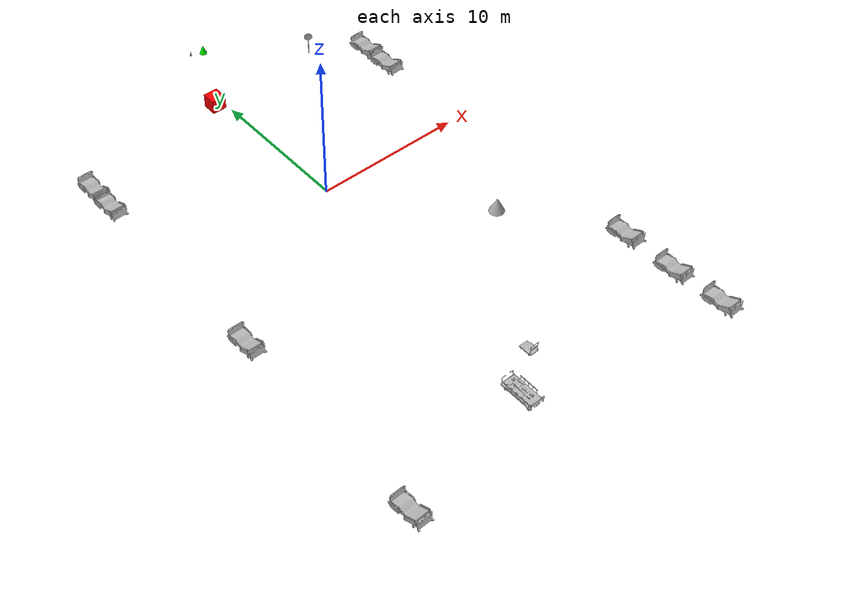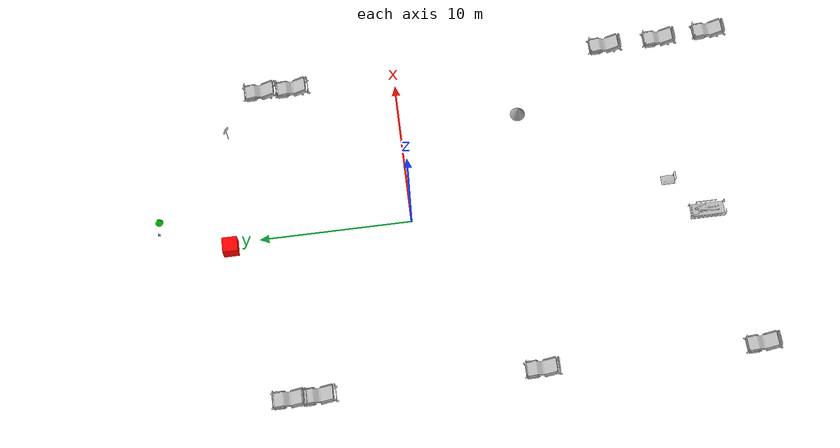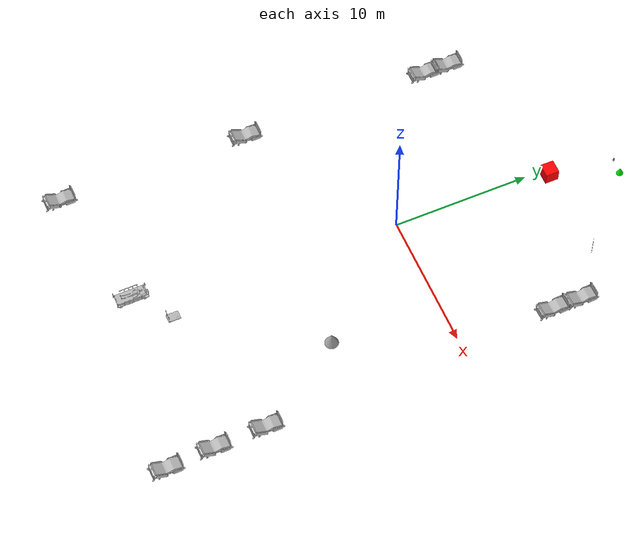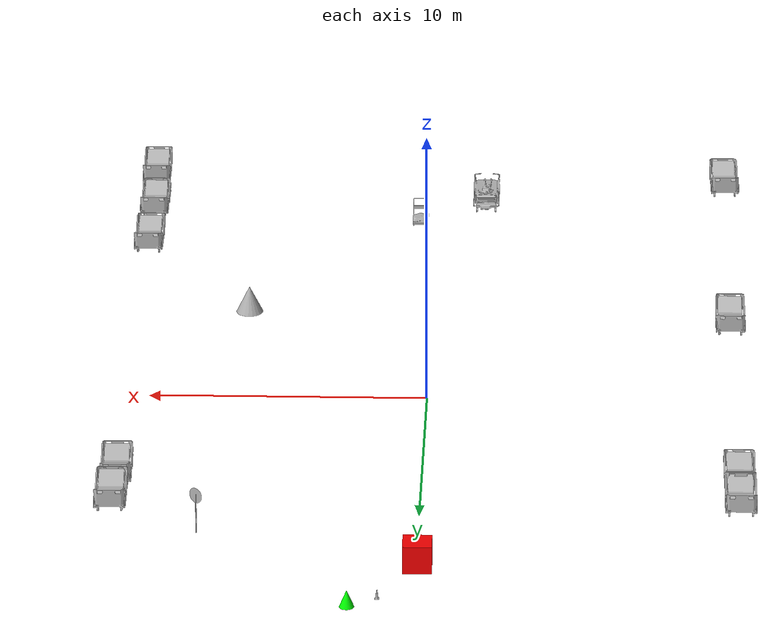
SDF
<sdf version="1.8">
 <world name="hospital">
  <gravity>0 0 -9.8</gravity>
  <physics name="default_physics" type="ode">
   <max_step_size>0.001</max_step_size>
   <real_time_factor>1</real_time_factor>
  </physics>
  <scene><ambient>0.3 0.3 0.3 1</ambient><background>0.7 0.8 0.9 1</background><shadows>true</shadows></scene>
  <plugin filename="gz-sim-physics-system" name="gz::sim::systems::Physics"/>
  <plugin filename="gz-sim-user-commands-system" name="gz::sim::systems::UserCommands"/>
  <plugin filename="gz-sim-scene-broadcaster-system" name="gz::sim::systems::SceneBroadcaster"/>
  <plugin filename="gz-sim-sensors-system" name="gz::sim::systems::Sensors">
   <render_engine>ogre2</render_engine>
  </plugin>
  <plugin filename="gz-sim-imu-system" name="gz::sim::systems::Imu"/>
  <plugin filename="gz-sim-contact-system" name="gz::sim::systems::Contact"/>
  <light type="directional" name="sun">
   <pose>0 0 10 0 0 0</pose>
   <diffuse>1.0 0.95 0.9 1</diffuse>
   <specular>0.3 0.3 0.3 1</specular>
   <attenuation>
    <range>1000</range>
    <constant>0.9</constant>
    <linear>0.01</linear>
    <quadratic>0.001</quadratic>
   </attenuation>
   <direction>-0.5 0.1 -0.9</direction>
  </light>
  <include>
   <uri>model://red_cone</uri>
   <static>true</static>
   <name>red_cone_1</name>
   <pose>1.2 16.5 0 0 0 0</pose>
  </include>
  <include>
   <uri>model://green_cone</uri>
   <static>true</static>
   <name>green_cone_1</name>
   <pose>2.2 16.5 0 0 0 0</pose>
  </include>
  <include>
   <uri>model://circle_sign</uri>
   <static>true</static>
   <name>circle_sign_1</name>
   <pose>7.5 11.5 0 0 0 2.5</pose>
  </include>
  <model name="goal_line_box">
   <static>true</static>
   <link name="link">
    <visual name="visual">
     <geometry><box><size>1 1 1</size></box></geometry>
     <material>
      <ambient>1 0 0 1</ambient>
      <diffuse>1 0 0 1</diffuse>
      <specular>0.1 0.1 0.1 1</specular>
      <emissive>0 0 0 1</emissive>
     </material>
    </visual>
   </link>
   <pose>0 12 -0.499 0 0 0</pose>
  </model>
  <include>
   <uri>model://CGMClassic</uri>
   <static>true</static>
   <name>CGMClassic_1</name>
   <pose>11.1777 -18.4129 0 0 0 -3.13719</pose>
  </include>
  <include>
   <uri>model://CGMClassic</uri>
   <static>true</static>
   <name>CGMClassic_2</name>
   <pose>11.1179 -14.6493 0 0 0 -3.13599</pose>
  </include>
  <include>
   <uri>model://CGMClassic</uri>
   <static>true</static>
   <name>CGMClassic_3</name>
   <pose>-11.2304 -21.1134 0 0 0 -3.11834</pose>
  </include>
  <include>
   <uri>model://CGMClassic</uri>
   <static>true</static>
   <name>CGMClassic_4</name>
   <pose>-11.0878 -7.00992 0 0 -0 3.1351</pose>
  </include>
  <include>
   <uri>model://CGMClassic</uri>
   <static>true</static>
   <name>CGMClassic_5</name>
   <pose>-11.0106 8.9505 -0.008203 -0.035019 -0.000392 3.13388</pose>
  </include>
  <include>
   <uri>model://CGMClassic</uri>
   <static>true</static>
   <name>CGMClassic_6</name>
   <pose>-11.025 7.10335 0 -0.035021 1.8e-05 -3.13762</pose>
  </include>
  <include>
   <uri>model://TrolleyBedPatient</uri>
   <static>true</static>
   <name>TrolleyBedPatient_1</name>
   <pose>-1.83202 -19.2612 0 0 -0 0</pose>
  </include>
  <include>
   <uri>model://CGMClassic</uri>
   <static>true</static>
   <name>CGMClassic_7</name>
   <pose>10.6166 9.06291 -0.008203 -0.03501 0.000885 -3.11285</pose>
  </include>
  <include>
   <uri>model://CGMClassic</uri>
   <static>true</static>
   <name>CGMClassic_8</name>
   <pose>10.6006 6.90956 -0.008203 -0.035003 0.001133 -3.10576</pose>
  </include>
  <include>
   <uri>model://ParkingTrolleyMin</uri>
   <static>true</static>
   <name>ParkingTrolleyMin_1</name>
   <pose>0.715846 -17.1496 -0.000121 -1e-06 -0 0</pose>
  </include>
  <include>
   <uri>model://CGMClassic</uri>
   <static>true</static>
   <name>CGMClassic_9</name>
   <pose>11.3613 -21.8867 0 0 0 -3.12292</pose>
  </include>
  <model name="goal_cone_01">
   <pose>6.855 -7.975 0.5 5.254459108606895e-17 -7.713284103729037e-10 0.2654</pose>
   <static>false</static>
   <link name="goal_cone_link">
    <inertial>
     <mass>1.0</mass>
     <inertia><ixx>0.075</ixx><ixy>0</ixy><ixz>0</ixz><iyy>0.075</iyy><iyz>0</iyz><izz>0.075</izz></inertia>
    </inertial>
    <collision name="goal_cone_collision">
     <geometry><cone><radius>0.5</radius><length>1.0</length></cone></geometry>
    </collision>
    <visual name="goal_cone_visual">
     <geometry><cone><radius>0.5</radius><length>1.0</length></cone></geometry>
     <material>
      <ambient>0.699999988 0.699999988 0.699999988 1.0</ambient>
      <diffuse>0.699999988 0.699999988 0.699999988 1.0</diffuse>
      <specular>1 1 1 1</specular>
     </material>
    </visual>
   </link>
  </model>
 </world>
</sdf>

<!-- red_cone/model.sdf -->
<sdf version="1.7">
  <model name="red Cone">
    <link name="link">
      <collision name="collision">
        <geometry>
          <mesh>
            <scale>3 3 3</scale>
            <uri>model://red_cone/meshes/model.dae</uri>
          </mesh>
        </geometry>
      </collision>
      <visual name="visual">
        <geometry>
          <mesh>
            <scale>3 3 3</scale>
            <uri>model://red_cone/meshes/model.dae</uri>
          </mesh>
        </geometry>
      </visual>
    </link>
  </model>
</sdf>

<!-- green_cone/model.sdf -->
<sdf version="1.6">
  <model name="green_cone">
    <static>true</static>
    <link name="link">
      <inertial>
        <mass>0.8</mass>
        <inertia>
          <ixx>0.063</ixx><iyy>0.063</iyy><izz>0.063</izz>
          <ixy>0</ixy><ixz>0</ixz><iyz>0</iyz>
        </inertia>
      </inertial>
      <collision name="collision">
        <geometry>
          <mesh>
            <uri>model://green_cone/meshes/cone.obj</uri>
          </mesh>
        </geometry>
      </collision>
      <visual name="visual">
        <geometry>
          <mesh>
            <uri>model://green_cone/meshes/cone.obj</uri>
          </mesh>
        </geometry>
        <material>
          <ambient>0 0.8 0 1</ambient>
          <diffuse>0 1 0 1</diffuse>
          <specular>0 0.3 0 1</specular>
        </material>
      </visual>
    </link>
  </model>
</sdf>

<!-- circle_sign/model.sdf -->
<sdf version="1.5">
  <model name="circle_sign">
    <static>true</static>
    <link name="link">
      <collision name="collision">
        <geometry>
          <mesh>
            <scale>7 7 7</scale>
            <uri>model://circle_sign/meshes/model.dae</uri>
          </mesh>
        </geometry>
      </collision>
      <visual name="visual">
        <geometry>
          <mesh>
            <scale>7 7 7</scale>
            <uri>model://circle_sign/meshes/model.dae</uri>
          </mesh>
        </geometry>
      </visual>
    </link>
  </model>
</sdf>

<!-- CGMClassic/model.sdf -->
<sdf version="1.6">
  <model name="CGMClassic">
   <static>true</static>
    <link name="body">
      <pose>0 0 0 0 0 0</pose>

      <visual name="visual">
        <geometry>
          <mesh>
            <uri>model://CGMClassic/meshes/CGMClassic.obj</uri>
            <scale>0.01 0.01 0.01</scale>
          </mesh>
        </geometry>
      </visual>

      <collision name="collision">
        <geometry>
          <mesh>
            <uri>model://CGMClassic/meshes/CGMClassic.obj</uri>
            <scale>0.01 0.01 0.01</scale>
          </mesh>
        </geometry>
      </collision>

    </link>
  </model>
</sdf>

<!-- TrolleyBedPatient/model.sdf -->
<sdf version="1.6">
  <model name="TrolleyBedPatient">
   <static>true</static>
    <link name="body">
      <pose>0 0 0 0 0 0</pose>

      <visual name="visual">
        <geometry>
          <mesh>
            <uri>model://TrolleyBedPatient/meshes/TrolleyBedPatient.obj</uri>
          </mesh>
        </geometry>
      </visual>

      <collision name="collision">
        <geometry>
          <mesh>
            <uri>model://TrolleyBedPatient/meshes/TrolleyBedPatient.obj</uri>
          </mesh>
        </geometry>
      </collision>

    </link>
  </model>
</sdf>

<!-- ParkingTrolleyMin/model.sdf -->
<sdf version="1.6">
  <model name="ParkingTrolleyMin">
    <link name="body">
      <pose>0 0 0 0 0 0</pose>

        <visual name="visual">
          <pose>0 0 0 0 0 0</pose>
          <geometry>
            <mesh><uri>model://ParkingTrolleyMin/meshes/trolleymin.obj</uri></mesh>
          </geometry>
        </visual>

        <collision name="collision">
          <pose>0 0 0 0 0 0</pose>
          <geometry>
            <mesh><uri>model://ParkingTrolleyMin/meshes/trolleymin.obj</uri></mesh>
          </geometry>
        </collision>

    </link>
  </model>
</sdf>
